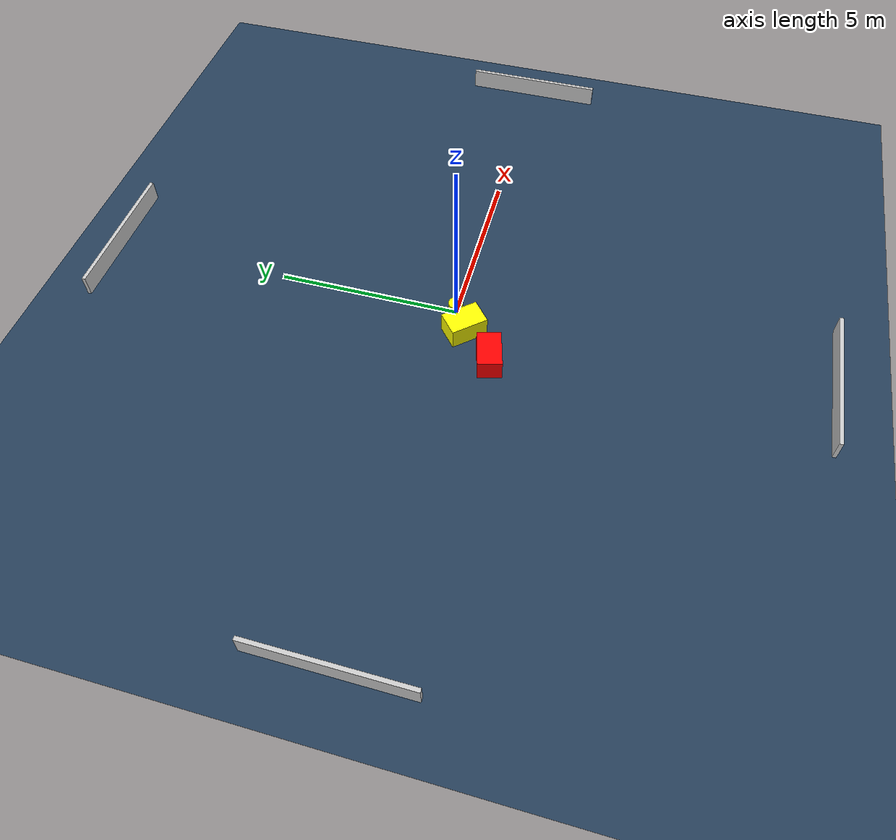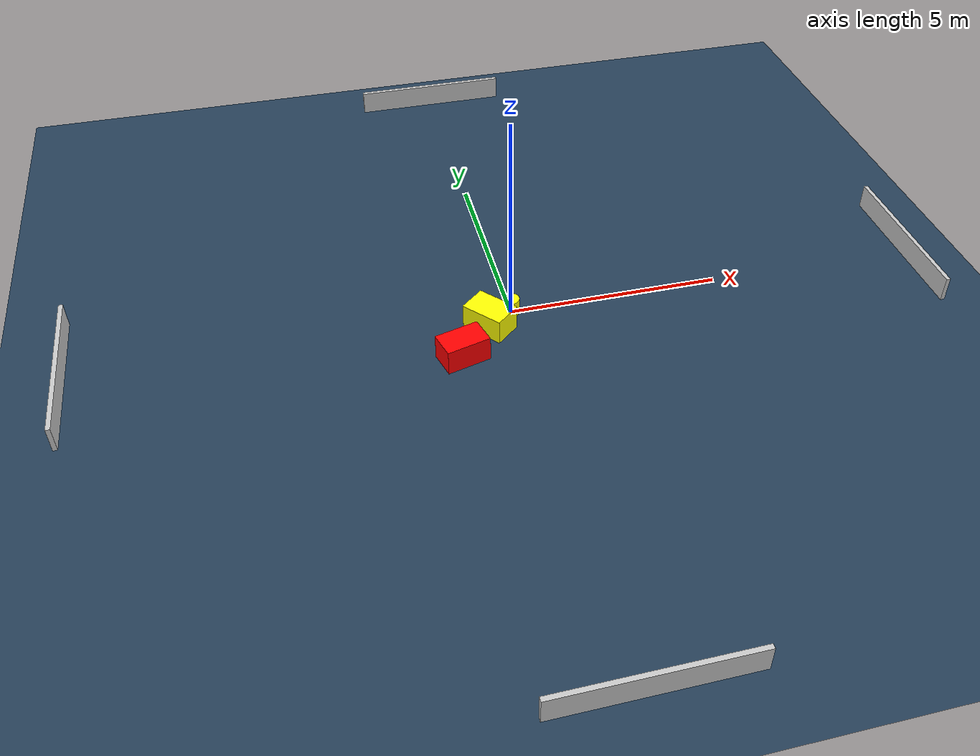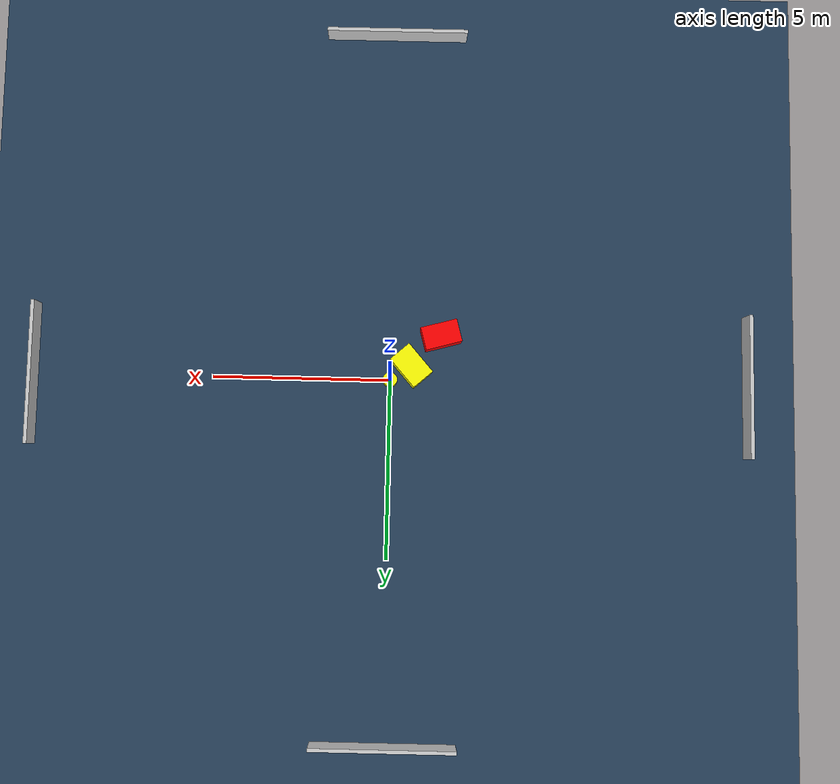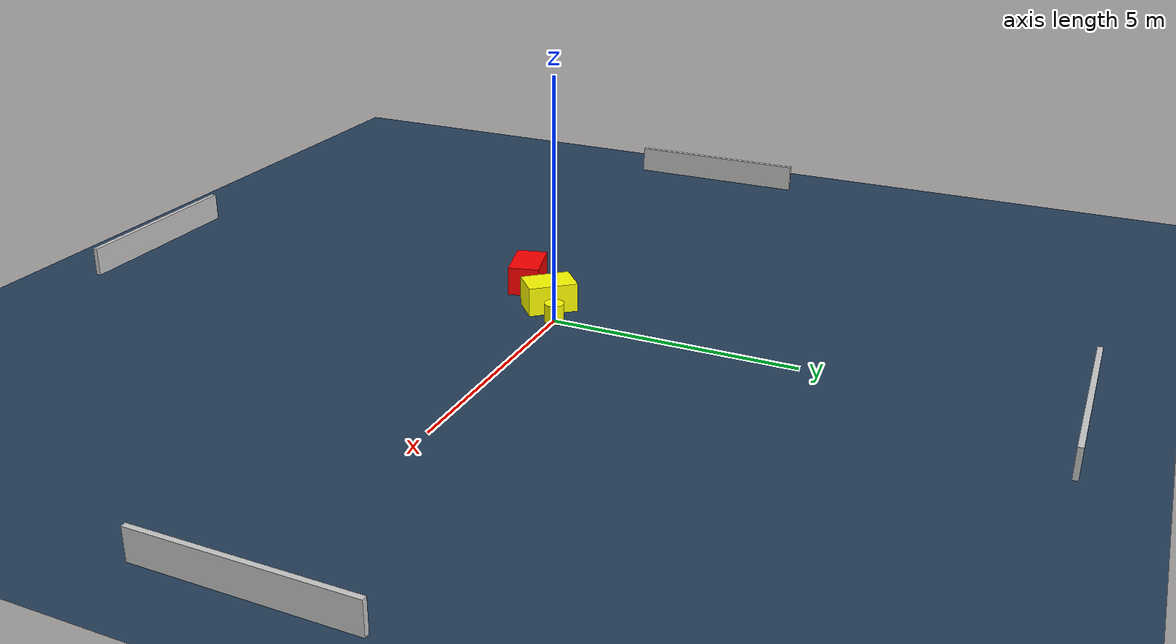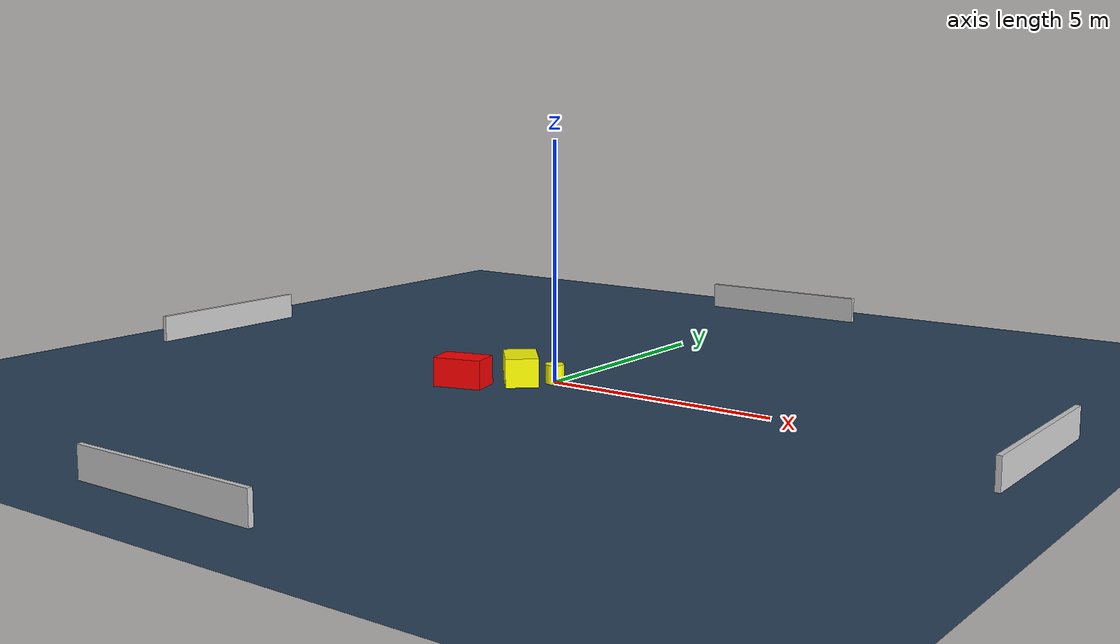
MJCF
<?xml version="1.0" ?>
<mujoco model="generated_environment">
  <option timestep="0.01" integrator="RK4" cone="elliptic"/>
  <default>
    <geom density="1"/>
  </default>
  <asset>
    <texture builtin="gradient" height="3072" name="skybox" rgb1="0.3 0.5 0.7" rgb2="0 0 0" type="skybox" width="512"/>
    <texture builtin="checker" height="300" name="groundplane" rgb1="0.2 0.3 0.4" rgb2="0.1 0.2 0.3" type="2d" width="300"/>
    <material name="groundplane" reflectance="0.2" texrepeat="5 5" texture="groundplane"/>
  </asset>
  <worldbody>
    <light dir="0 0 -1" directional="true" pos="0 0 1.5"/>
    <geom condim="3" friction="0.5 0.005 0.001" material="groundplane" name="floor" pos="0 0 0" size="0 0 0.05" type="plane"/>
    <body name="walls">
      <geom name="wall_1" condim="4" pos="-10.0 0.0 0.3" rgba="0.800000011920929 0.800000011920929 0.800000011920929 1.0" size="0.05 2.0 0.3" type="box"/>
      <geom name="wall_2" condim="4" pos="10.0 0.0 0.3" rgba="0.800000011920929 0.800000011920929 0.800000011920929 1.0" size="0.05 2.0 0.3" type="box"/>
      <geom name="wall_3" condim="4" pos="0.0 -10.0 0.3" rgba="0.800000011920929 0.800000011920929 0.800000011920929 1.0" size="2.0 0.05 0.3" type="box"/>
      <geom name="wall_4" condim="4" pos="0.0 10.0 0.3" rgba="0.800000011920929 0.800000011920929 0.800000011920929 1.0" size="2.0 0.05 0.3" type="box"/>
    </body>
    <body name="robot">
      <joint name="joint_x" type="slide" pos="0 0 0" axis="1 0 0"/>
      <joint name="joint_y" type="slide" pos="0 0 0" axis="0 1 0"/>
      <geom name="robot" type="cylinder" pos="0.0 0.0 0.2" size="0.2 0.2 0.0" mass="5.0" friction="1.0 0.005 0.0001" condim="4" rgba="1.0 1.0 0.0 1.0"/>
    </body>
    <body name="obstacle_1_movable">
      <geom name="obstacle_1_movable" condim="4" pos="-0.5841888575092073 -0.38942753967395966 0.3" euler="0 0 131.0022934699883" friction="0.0 0.005 0.001" rgba="1.0 1.0 0.0 1.0" size="0.5098246209917646 0.34346655159276995 0.3" type="box" mass="0.1"/>
      <joint type="free"/>
    </body>
    <body name="obstacle_2_static">
      <geom name="obstacle_2_static" condim="4" pos="-1.39992582098774 -1.2701769647339003 0.3" euler="0 0 105.21591838046903" friction="0.0 0.005 0.001" rgba="1.0 0.0 0.0 1.0" size="0.32186375690250024 0.5180194163208711 0.3" type="box"/>
    </body>
  </worldbody>
  <actuator>
    <motor name="actuator_x" joint="joint_x" gear="1" ctrlrange="-1 1"/>
    <motor name="actuator_y" joint="joint_y" gear="1" ctrlrange="-1 1"/>
  </actuator>
</mujoco>
